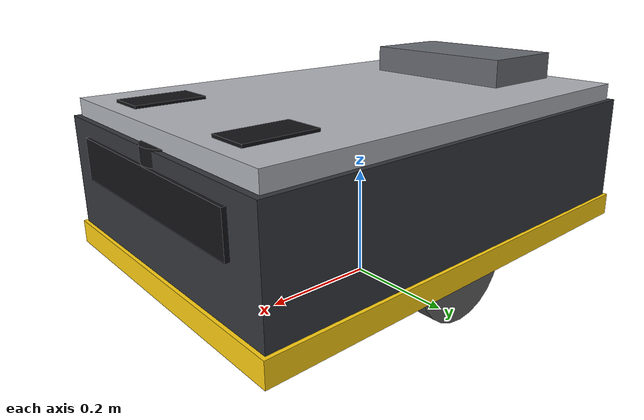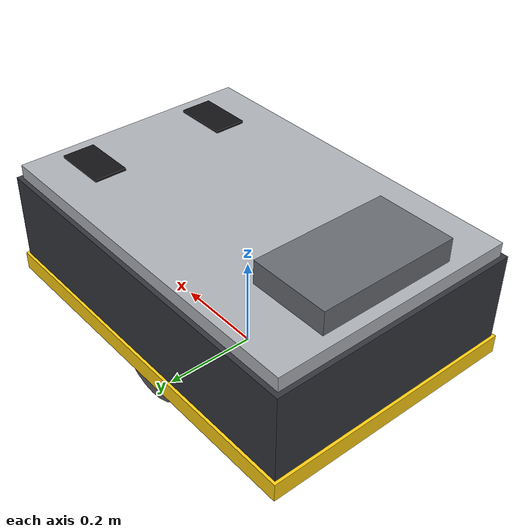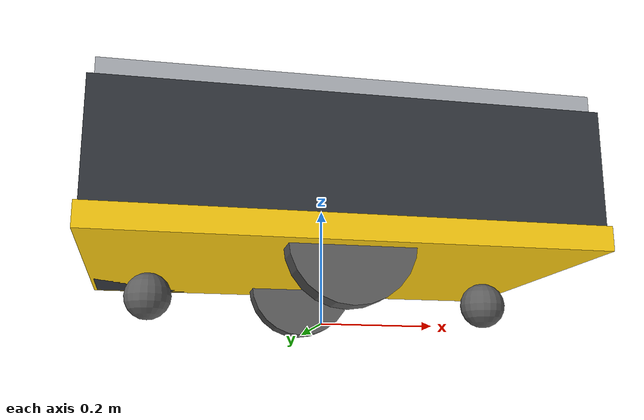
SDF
<sdf version='1.9'>
  <model name='warehouse_amr'>
    <link name='base_footprint'>
      <inertial>
        <pose>0.0006876152832674575 -4.463941751010806e-22 0.1887348814229249 0 0 0</pose>
        <mass>60.719999999999978</mass>
        <inertia>
          <ixx>1.866830208121147</ixx>
          <ixy>-1.863784959882032e-23</ixy>
          <ixz>-0.0046394612308300401</ixz>
          <iyy>3.6234429628078368</iyy>
          <iyz>-4.8446186684418529e-21</iyz>
          <izz>4.7830873546866934</izz>
        </inertia>
      </inertial>
      <collision name='base_footprint_fixed_joint_lump__base_link_collision'>
        <pose>0 0 0.205 0 0 0</pose>
        <geometry>
          <box>
            <size>0.8 0.55 0.27</size>
          </box>
        </geometry>
      </collision>
      <collision name='base_footprint_fixed_joint_lump__caster_front_link_collision_1'>
        <pose>0.3 0 0.04 0 0 0</pose>
        <geometry>
          <sphere>
            <radius>0.040000000000000001</radius>
          </sphere>
        </geometry>
      </collision>
      <collision name='base_footprint_fixed_joint_lump__caster_rear_link_collision_2'>
        <pose>-0.3 0 0.04 0 0 0</pose>
        <geometry>
          <sphere>
            <radius>0.040000000000000001</radius>
          </sphere>
        </geometry>
      </collision>
      <visual name='base_footprint_fixed_joint_lump__base_link_visual'>
        <pose>0 0 0.205 0 0 0</pose>
        <geometry>
          <box>
            <size>0.8 0.55 0.23</size>
          </box>
        </geometry>
        <material>
          <diffuse>0.2 0.2125 0.2375 1</diffuse>
          <ambient>0.2 0.2125 0.2375 1</ambient>
        </material>
      </visual>
      <visual name='base_footprint_fixed_joint_lump__bumper_link_visual_1'>
        <pose>0 0 0.11 0 0 0</pose>
        <geometry>
          <box>
            <size>0.812 0.562 0.04</size>
          </box>
        </geometry>
        <material>
          <diffuse>1 0.8125 0.0625 1</diffuse>
          <ambient>1 0.8125 0.0625 1</ambient>
        </material>
      </visual>
      <visual name='base_footprint_fixed_joint_lump__cabinet_link_visual_2'>
        <pose>-0.28 0 0.375 0 0 0</pose>
        <geometry>
          <box>
            <size>0.17 0.3 0.05</size>
          </box>
        </geometry>
        <material>
          <diffuse>0.4125 0.425 0.45 1</diffuse>
          <ambient>0.4125 0.425 0.45 1</ambient>
        </material>
      </visual>
      <visual name='base_footprint_fixed_joint_lump__caster_front_link_visual_3'>
        <pose>0.3 0 0.04 0 0 0</pose>
        <geometry>
          <sphere>
            <radius>0.040000000000000001</radius>
          </sphere>
        </geometry>
        <material>
          <diffuse>0.375 0.375 0.375 1</diffuse>
          <ambient>0.375 0.375 0.375 1</ambient>
        </material>
      </visual>
      <visual name='base_footprint_fixed_joint_lump__caster_rear_link_visual_4'>
        <pose>-0.3 0 0.04 0 0 0</pose>
        <geometry>
          <sphere>
            <radius>0.040000000000000001</radius>
          </sphere>
        </geometry>
        <material>
          <diffuse>0.375 0.375 0.375 1</diffuse>
          <ambient>0.375 0.375 0.375 1</ambient>
        </material>
      </visual>
      <visual name='base_footprint_fixed_joint_lump__deck_link_visual_5'>
        <pose>0 0 0.335 0 0 0</pose>
        <geometry>
          <box>
            <size>0.78 0.53 0.03</size>
          </box>
        </geometry>
        <material>
          <diffuse>0.6875 0.7 0.725 1</diffuse>
          <ambient>0.6875 0.7 0.725 1</ambient>
        </material>
      </visual>
      <visual name='base_footprint_fixed_joint_lump__deck_slot_left_link_visual_6'>
        <pose>0.3 0.15 0.351 0 0 0</pose>
        <geometry>
          <box>
            <size>0.12 0.07 0.008</size>
          </box>
        </geometry>
        <material>
          <diffuse>0.075 0.075 0.0875 1</diffuse>
          <ambient>0.075 0.075 0.0875 1</ambient>
        </material>
      </visual>
      <visual name='base_footprint_fixed_joint_lump__deck_slot_right_link_visual_7'>
        <pose>0.3 -0.15 0.351 0 0 0</pose>
        <geometry>
          <box>
            <size>0.12 0.07 0.008</size>
          </box>
        </geometry>
        <material>
          <diffuse>0.075 0.075 0.0875 1</diffuse>
          <ambient>0.075 0.075 0.0875 1</ambient>
        </material>
      </visual>
      <visual name='base_footprint_fixed_joint_lump__base_scan_visual_8'>
        <pose>0.36 0 0.3 0 0 0</pose>
        <geometry>
          <cylinder>
            <length>0.044999999999999998</length>
            <radius>0.044999999999999998</radius>
          </cylinder>
        </geometry>
        <material>
          <diffuse>0.075 0.075 0.0875 1</diffuse>
          <ambient>0.075 0.075 0.0875 1</ambient>
        </material>
      </visual>
      <visual name='base_footprint_fixed_joint_lump__sensor_bar_link_visual_9'>
        <pose>0.392 0 0.26 0 0 0</pose>
        <geometry>
          <box>
            <size>0.03 0.42 0.07</size>
          </box>
        </geometry>
        <material>
          <diffuse>0.075 0.075 0.0875 1</diffuse>
          <ambient>0.075 0.075 0.0875 1</ambient>
        </material>
      </visual>
    </link>
    <joint name='wheel_left_joint' type='revolute'>
      <pose relative_to='base_footprint'>0 0.22 0.1 -1.5708 0 0</pose>
      <parent>base_footprint</parent>
      <child>wheel_left_link</child>
      <axis>
        <xyz>0 0 1</xyz>
        <limit>
          <lower>-10000000000000000</lower>
          <upper>10000000000000000</upper>
        </limit>
        <dynamics>
          <spring_reference>0</spring_reference>
          <spring_stiffness>0</spring_stiffness>
        </dynamics>
      </axis>
    </joint>
    <link name='wheel_left_link'>
      <pose relative_to='wheel_left_joint'>0 0 0 0 0 0</pose>
      <inertial>
        <pose>0 0 0 0 0 0</pose>
        <mass>2</mass>
        <inertia>
          <ixx>0.0054166700000000002</ixx>
          <ixy>0</ixy>
          <ixz>0</ixz>
          <iyy>0.0054166700000000002</iyy>
          <iyz>0</iyz>
          <izz>0.01</izz>
        </inertia>
      </inertial>
      <collision name='wheel_left_link_collision'>
        <pose>0 0 0 0 0 0</pose>
        <geometry>
          <cylinder>
            <length>0.050000000000000003</length>
            <radius>0.10000000000000001</radius>
          </cylinder>
        </geometry>
      </collision>
      <visual name='wheel_left_link_visual'>
        <pose>0 0 0 0 0 0</pose>
        <geometry>
          <cylinder>
            <length>0.050000000000000003</length>
            <radius>0.10000000000000001</radius>
          </cylinder>
        </geometry>
        <material>
          <diffuse>0.375 0.375 0.375 1</diffuse>
          <ambient>0.375 0.375 0.375 1</ambient>
        </material>
      </visual>
    </link>
    <joint name='wheel_right_joint' type='revolute'>
      <pose relative_to='base_footprint'>0 -0.22 0.1 -1.5708 0 0</pose>
      <parent>base_footprint</parent>
      <child>wheel_right_link</child>
      <axis>
        <xyz>0 0 1</xyz>
        <limit>
          <lower>-10000000000000000</lower>
          <upper>10000000000000000</upper>
        </limit>
        <dynamics>
          <spring_reference>0</spring_reference>
          <spring_stiffness>0</spring_stiffness>
        </dynamics>
      </axis>
    </joint>
    <link name='wheel_right_link'>
      <pose relative_to='wheel_right_joint'>0 0 0 0 0 0</pose>
      <inertial>
        <pose>0 0 0 0 0 0</pose>
        <mass>2</mass>
        <inertia>
          <ixx>0.0054166700000000002</ixx>
          <ixy>0</ixy>
          <ixz>0</ixz>
          <iyy>0.0054166700000000002</iyy>
          <iyz>0</iyz>
          <izz>0.01</izz>
        </inertia>
      </inertial>
      <collision name='wheel_right_link_collision'>
        <pose>0 0 0 0 0 0</pose>
        <geometry>
          <cylinder>
            <length>0.050000000000000003</length>
            <radius>0.10000000000000001</radius>
          </cylinder>
        </geometry>
      </collision>
      <visual name='wheel_right_link_visual'>
        <pose>0 0 0 0 0 0</pose>
        <geometry>
          <cylinder>
            <length>0.050000000000000003</length>
            <radius>0.10000000000000001</radius>
          </cylinder>
        </geometry>
        <material>
          <diffuse>0.375 0.375 0.375 1</diffuse>
          <ambient>0.375 0.375 0.375 1</ambient>
        </material>
      </visual>
    </link>
    <plugin name='ignition::gazebo::systems::Label' filename='gz-sim-label-system'>
      <label>23</label>
    </plugin>
    <plugin name='gz::sim::systems::DiffDrive' filename='gz-sim-diff-drive-system'>
      <left_joint>wheel_left_joint</left_joint>
      <right_joint>wheel_right_joint</right_joint>
      <wheel_separation>0.44</wheel_separation>
      <wheel_radius>0.1</wheel_radius>
      <topic>/model/turtlebot3/cmd_vel</topic>
      <odom_topic>/model/turtlebot3/odometry</odom_topic>
      <frame_id>odom</frame_id>
      <child_frame_id>base_link</child_frame_id>
      <odom_publish_frequency>50</odom_publish_frequency>
      <publish_tf>true</publish_tf>
    </plugin>
    <frame name='bumper_joint' attached_to='base_link'>
      <pose>0 0 0.1 0 -0 0</pose>
    </frame>
    <frame name='bumper_link' attached_to='bumper_joint'/>
    <frame name='cabinet_joint' attached_to='base_link'>
      <pose>-0.28 0 0.365 0 -0 0</pose>
    </frame>
    <frame name='cabinet_link' attached_to='cabinet_joint'/>
    <frame name='caster_front_joint' attached_to='base_link'>
      <pose>0.3 0 0.03 0 -0 0</pose>
    </frame>
    <frame name='caster_front_link' attached_to='caster_front_joint'/>
    <frame name='caster_rear_joint' attached_to='base_link'>
      <pose>-0.3 0 0.03 0 -0 0</pose>
    </frame>
    <frame name='caster_rear_link' attached_to='caster_rear_joint'/>
    <frame name='deck_joint' attached_to='base_link'>
      <pose>0 0 0.325 0 -0 0</pose>
    </frame>
    <frame name='deck_link' attached_to='deck_joint'/>
    <frame name='deck_slot_left_joint' attached_to='base_link'>
      <pose>0.3 0.15 0.341 0 -0 0</pose>
    </frame>
    <frame name='deck_slot_left_link' attached_to='deck_slot_left_joint'/>
    <frame name='deck_slot_right_joint' attached_to='base_link'>
      <pose>0.3 -0.15 0.341 0 -0 0</pose>
    </frame>
    <frame name='deck_slot_right_link' attached_to='deck_slot_right_joint'/>
    <frame name='imu_joint' attached_to='base_link'>
      <pose>0 0 0.2 0 -0 0</pose>
    </frame>
    <frame name='imu_link' attached_to='imu_joint'/>
    <frame name='scan_joint' attached_to='base_link'>
      <pose>0.36 0 0.29 0 -0 0</pose>
    </frame>
    <frame name='base_scan' attached_to='scan_joint'/>
    <frame name='sensor_bar_joint' attached_to='base_link'>
      <pose>0.392 0 0.25 0 -0 0</pose>
    </frame>
    <frame name='sensor_bar_link' attached_to='sensor_bar_joint'/>
    <frame name='base_joint' attached_to='base_footprint'>
      <pose>0 0 0.01 0 -0 0</pose>
    </frame>
    <frame name='base_link' attached_to='base_joint'/>
  </model>
</sdf>
